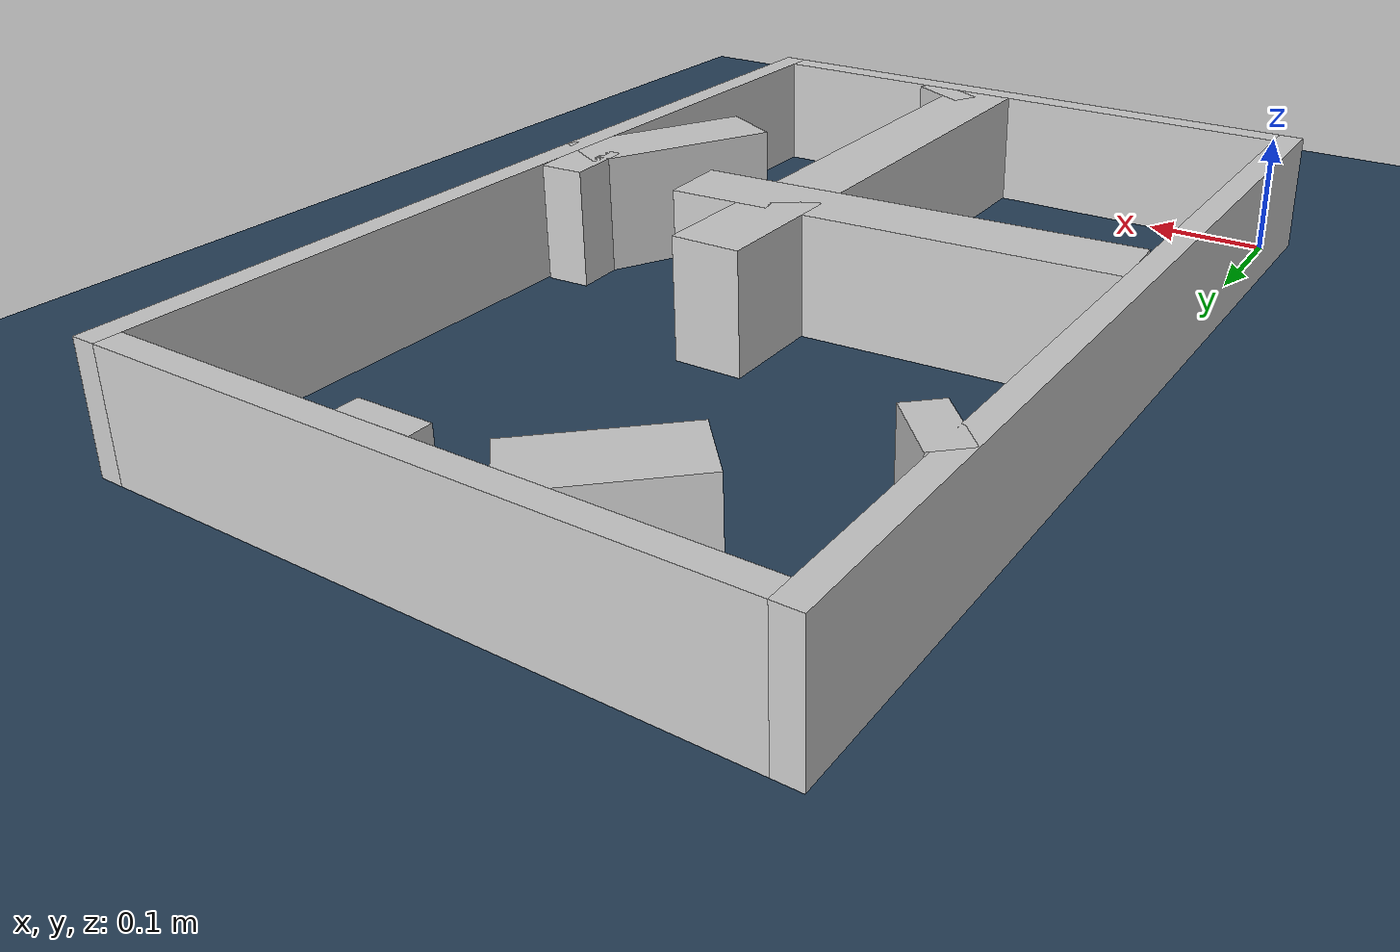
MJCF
<?xml version="1.0" ?>
<mujoco model="generated_real_template">
  <compiler angle="degree"/>
  <option timestep="0.002" integrator="implicitfast" iterations="100" cone="elliptic"/>
  <default>
    <geom density="1"/>
  </default>
  <asset>
    <texture builtin="gradient" height="3072" rgb1="0.3 0.5 0.7" rgb2="0 0 0" type="skybox" width="512"/>
    <texture builtin="checker" height="300" mark="edge" markrgb="0.8 0.8 0.8" name="groundplane" rgb1="0.2 0.3 0.4" rgb2="0.1 0.2 0.3" type="2d" width="300"/>
    <material name="groundplane" reflectance="0.2" texrepeat="5 5" texture="groundplane" texuniform="true"/>
  </asset>
  <worldbody>
    <light dir="0 0 -1" directional="true" pos="0 0 1.5"/>
    <geom name="floor" type="plane" condim="4" friction="0.5 0.005 0.001" material="groundplane" size="0 0 0.05"/>
    <body name="walls">
      <geom name="wall_boundary_left" type="box" condim="4" friction="1.0 0.005 0.0001" rgba="0.8 0.8 0.8 1" pos="-0.010000 0.387500 0.050000" euler="0 0 0.000000" size="0.010000 0.407500 0.050000"/>
      <geom name="wall_boundary_right" type="box" condim="4" friction="1.0 0.005 0.0001" rgba="0.8 0.8 0.8 1" pos="0.500000 0.387500 0.050000" euler="0 0 0.000000" size="0.010000 0.407500 0.050000"/>
      <geom name="wall_boundary_bottom" type="box" condim="4" friction="1.0 0.005 0.0001" rgba="0.8 0.8 0.8 1" pos="0.245000 -0.010000 0.050000" euler="0 0 0.000000" size="0.245000 0.010000 0.050000"/>
      <geom name="wall_boundary_top" type="box" condim="4" friction="1.0 0.005 0.0001" rgba="0.8 0.8 0.8 1" pos="0.245000 0.785000 0.050000" euler="0 0 0.000000" size="0.245000 0.010000 0.050000"/>
      <geom name="wall_inner_1_1" type="box" condim="4" friction="1.0 0.005 0.0001" rgba="0.8 0.8 0.8 1" pos="0.181256 0.341734 0.050000" euler="0 0 3.494958" size="0.181594 0.028500 0.050000"/>
      <geom name="wall_inner_1_2" type="box" condim="4" friction="1.0 0.005 0.0001" rgba="0.8 0.8 0.8 1" pos="0.471243 0.359445 0.050000" euler="0 0 3.494958" size="0.018792 0.028500 0.050000"/>
      <geom name="wall_inner_2_1" type="box" condim="4" friction="1.0 0.005 0.0001" rgba="0.8 0.8 0.8 1" pos="0.446696 0.273080 0.050000" euler="0 0 -117.645741" size="0.082019 0.028500 0.050000"/>
      <geom name="wall_inner_2_2" type="box" condim="4" friction="1.0 0.005 0.0001" rgba="0.8 0.8 0.8 1" pos="0.309057 0.010313 0.050000" euler="0 0 -117.645741" size="0.011642 0.028500 0.050000"/>
      <geom name="wall_inner_3_1" type="box" condim="4" friction="1.0 0.005 0.0001" rgba="0.8 0.8 0.8 1" pos="0.142098 0.734207 0.050000" euler="0 0 -136.892078" size="0.058511 0.028500 0.050000"/>
      <geom name="wall_inner_3_2" type="box" condim="4" friction="1.0 0.005 0.0001" rgba="0.8 0.8 0.8 1" pos="0.011041 0.611533 0.050000" euler="0 0 -136.892078" size="0.015123 0.028500 0.050000"/>
      <geom name="wall_inner_4_1" type="box" condim="4" friction="1.0 0.005 0.0001" rgba="0.8 0.8 0.8 1" pos="0.271354 0.766142 0.050000" euler="0 0 -89.500727" size="0.008859 0.028500 0.050000"/>
      <geom name="wall_inner_4_2" type="box" condim="4" friction="1.0 0.005 0.0001" rgba="0.8 0.8 0.8 1" pos="0.276023 0.230303 0.050000" euler="0 0 -89.500727" size="0.230312 0.028500 0.050000"/>
    </body>
  </worldbody>
</mujoco>
